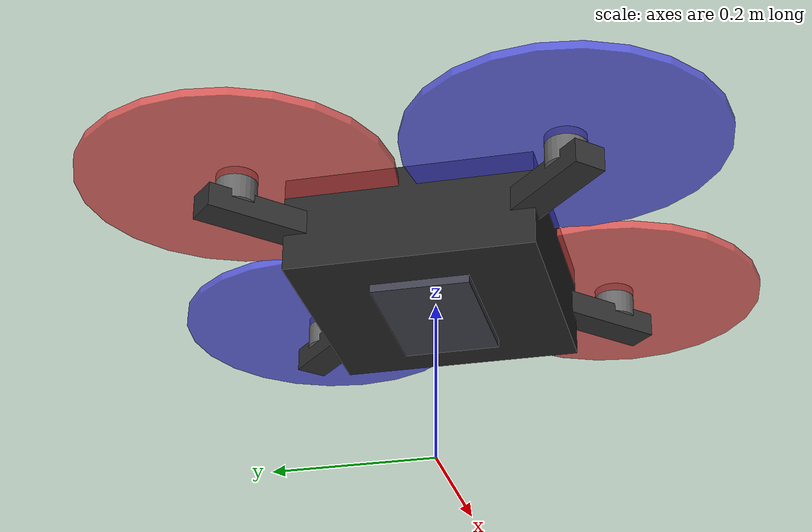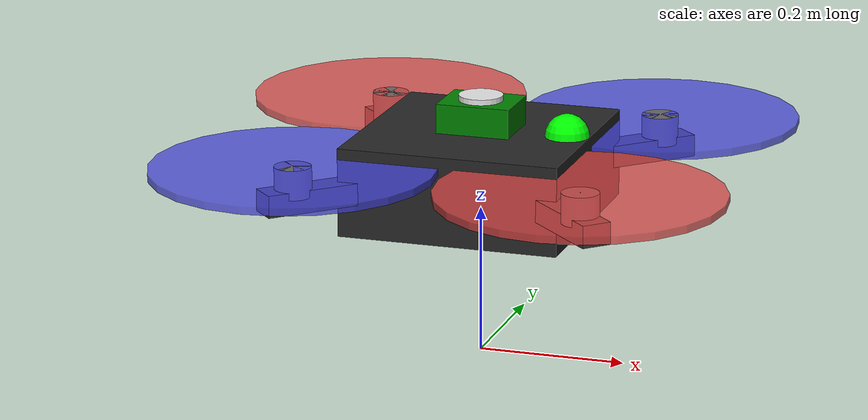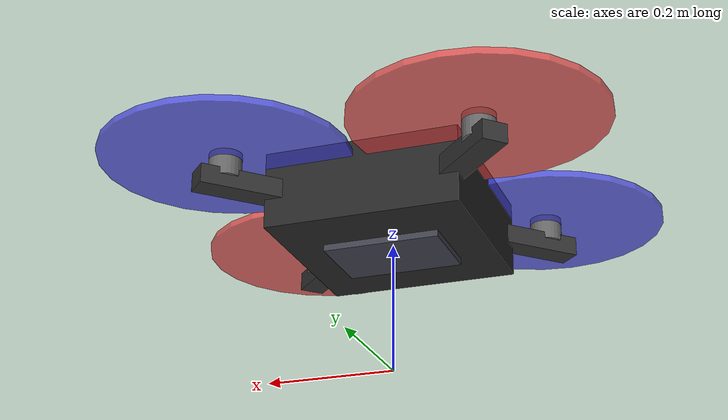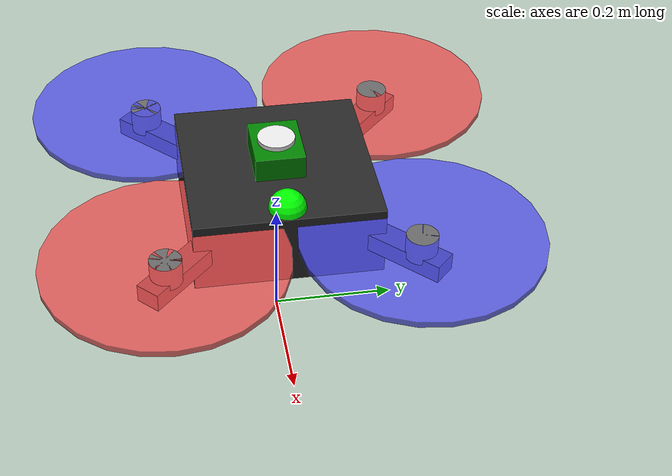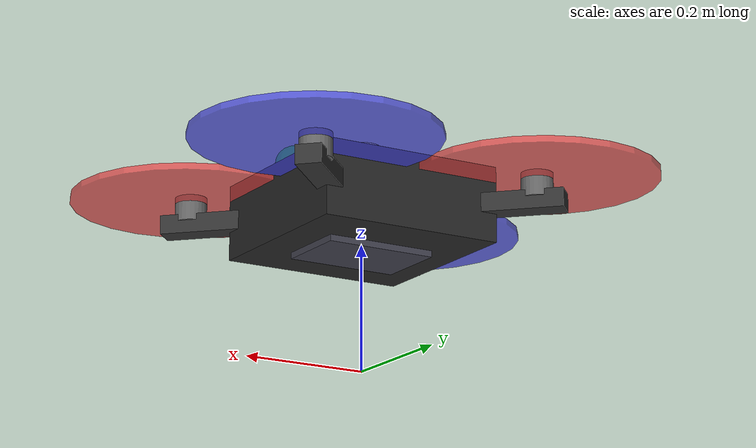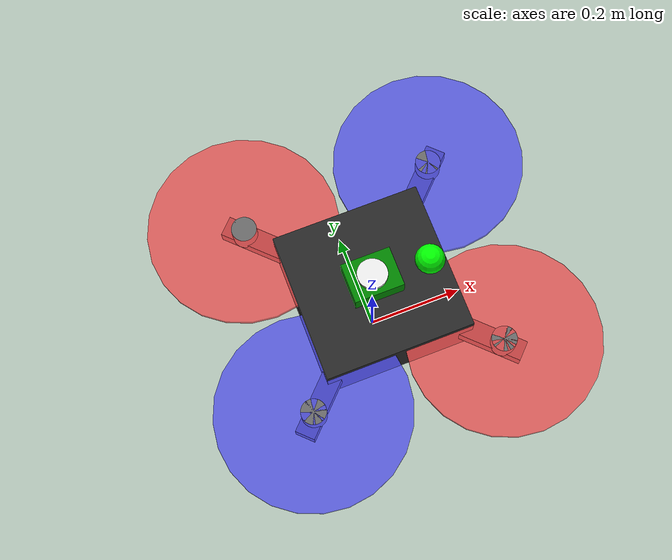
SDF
<?xml version="1.0" ?>
<sdf version="1.9">
  <model name="f11_base">
    <pose>0 0 0.25 0 0 0</pose>

    <!-- F-11 Base Link (Main Body) -->
    <link name="base_link">
      <inertial>
        <!-- Mass: 4.5 kg base frame -->
        <mass>4.5</mass>
        <inertia>
          <!-- Inertia for ~300x300x150mm body with arms -->
          <ixx>0.085</ixx>
          <ixy>0</ixy>
          <ixz>0</ixz>
          <iyy>0.085</iyy>
          <iyz>0</iyz>
          <izz>0.145</izz>
        </inertia>
      </inertial>

      <!-- Main body visual - central frame -->
      <visual name="body_visual">
        <geometry>
          <box>
            <size>0.30 0.30 0.12</size>
          </box>
        </geometry>
        <material>
          <ambient>0.1 0.1 0.1 1</ambient>
          <diffuse>0.15 0.15 0.15 1</diffuse>
          <specular>0.3 0.3 0.3 1</specular>
        </material>
      </visual>

      <!-- Battery bay visual -->
      <visual name="battery_visual">
        <pose>0 0 -0.04 0 0 0</pose>
        <geometry>
          <box>
            <size>0.18 0.12 0.06</size>
          </box>
        </geometry>
        <material>
          <ambient>0.2 0.2 0.25 1</ambient>
          <diffuse>0.25 0.25 0.3 1</diffuse>
        </material>
      </visual>

      <!-- Jetson Orin NX housing visual -->
      <visual name="compute_visual">
        <pose>0 0 0.08 0 0 0</pose>
        <geometry>
          <box>
            <size>0.10 0.08 0.04</size>
          </box>
        </geometry>
        <material>
          <ambient>0.0 0.4 0.0 1</ambient>
          <diffuse>0.0 0.5 0.0 1</diffuse>
        </material>
      </visual>

      <!-- Front marker for orientation (green) -->
      <visual name="front_marker">
        <pose>0.12 0 0.06 0 0 0</pose>
        <geometry>
          <sphere>
            <radius>0.03</radius>
          </sphere>
        </geometry>
        <material>
          <ambient>0 1 0 1</ambient>
          <diffuse>0 1 0 1</diffuse>
        </material>
      </visual>

      <!-- Arms visual representation -->
      <!-- Front-Right arm -->
      <visual name="arm_fr_visual">
        <pose>0.1375 -0.1375 0 0 0 -0.785398</pose>
        <geometry>
          <box>
            <size>0.25 0.04 0.03</size>
          </box>
        </geometry>
        <material>
          <ambient>0.15 0.15 0.15 1</ambient>
          <diffuse>0.2 0.2 0.2 1</diffuse>
        </material>
      </visual>

      <!-- Front-Left arm -->
      <visual name="arm_fl_visual">
        <pose>0.1375 0.1375 0 0 0 0.785398</pose>
        <geometry>
          <box>
            <size>0.25 0.04 0.03</size>
          </box>
        </geometry>
        <material>
          <ambient>0.15 0.15 0.15 1</ambient>
          <diffuse>0.2 0.2 0.2 1</diffuse>
        </material>
      </visual>

      <!-- Back-Right arm -->
      <visual name="arm_br_visual">
        <pose>-0.1375 -0.1375 0 0 0 0.785398</pose>
        <geometry>
          <box>
            <size>0.25 0.04 0.03</size>
          </box>
        </geometry>
        <material>
          <ambient>0.15 0.15 0.15 1</ambient>
          <diffuse>0.2 0.2 0.2 1</diffuse>
        </material>
      </visual>

      <!-- Back-Left arm -->
      <visual name="arm_bl_visual">
        <pose>-0.1375 0.1375 0 0 0 -0.785398</pose>
        <geometry>
          <box>
            <size>0.25 0.04 0.03</size>
          </box>
        </geometry>
        <material>
          <ambient>0.15 0.15 0.15 1</ambient>
          <diffuse>0.2 0.2 0.2 1</diffuse>
        </material>
      </visual>

      <!-- Collision geometry -->
      <collision name="body_collision">
        <geometry>
          <box>
            <size>0.55 0.55 0.15</size>
          </box>
        </geometry>
      </collision>
    </link>

    <!-- Rotor 0 (Front Right - CW) -->
    <link name="rotor_0">
      <pose>0.195 -0.195 0.04 0 0 0</pose>
      <inertial>
        <mass>0.025</mass>
        <inertia>
          <ixx>1.0e-05</ixx>
          <ixy>0</ixy>
          <ixz>0</ixz>
          <iyy>5.0e-04</iyy>
          <iyz>0</iyz>
          <izz>5.0e-04</izz>
        </inertia>
      </inertial>
      <visual name="rotor_visual">
        <geometry>
          <cylinder>
            <radius>0.19</radius>
            <length>0.01</length>
          </cylinder>
        </geometry>
        <material>
          <ambient>0.8 0.2 0.2 0.8</ambient>
          <diffuse>0.9 0.3 0.3 0.8</diffuse>
        </material>
      </visual>
      <visual name="motor_visual">
        <pose>0 0 -0.015 0 0 0</pose>
        <geometry>
          <cylinder>
            <radius>0.025</radius>
            <length>0.04</length>
          </cylinder>
        </geometry>
        <material>
          <ambient>0.3 0.3 0.3 1</ambient>
          <diffuse>0.4 0.4 0.4 1</diffuse>
        </material>
      </visual>
    </link>

    <!-- Rotor 1 (Back Left - CW) -->
    <link name="rotor_1">
      <pose>-0.195 0.195 0.04 0 0 0</pose>
      <inertial>
        <mass>0.025</mass>
        <inertia>
          <ixx>1.0e-05</ixx>
          <ixy>0</ixy>
          <ixz>0</ixz>
          <iyy>5.0e-04</iyy>
          <iyz>0</iyz>
          <izz>5.0e-04</izz>
        </inertia>
      </inertial>
      <visual name="rotor_visual">
        <geometry>
          <cylinder>
            <radius>0.19</radius>
            <length>0.01</length>
          </cylinder>
        </geometry>
        <material>
          <ambient>0.8 0.2 0.2 0.8</ambient>
          <diffuse>0.9 0.3 0.3 0.8</diffuse>
        </material>
      </visual>
      <visual name="motor_visual">
        <pose>0 0 -0.015 0 0 0</pose>
        <geometry>
          <cylinder>
            <radius>0.025</radius>
            <length>0.04</length>
          </cylinder>
        </geometry>
        <material>
          <ambient>0.3 0.3 0.3 1</ambient>
          <diffuse>0.4 0.4 0.4 1</diffuse>
        </material>
      </visual>
    </link>

    <!-- Rotor 2 (Front Left - CCW) -->
    <link name="rotor_2">
      <pose>0.195 0.195 0.04 0 0 0</pose>
      <inertial>
        <mass>0.025</mass>
        <inertia>
          <ixx>1.0e-05</ixx>
          <ixy>0</ixy>
          <ixz>0</ixz>
          <iyy>5.0e-04</iyy>
          <iyz>0</iyz>
          <izz>5.0e-04</izz>
        </inertia>
      </inertial>
      <visual name="rotor_visual">
        <geometry>
          <cylinder>
            <radius>0.19</radius>
            <length>0.01</length>
          </cylinder>
        </geometry>
        <material>
          <ambient>0.2 0.2 0.8 0.8</ambient>
          <diffuse>0.3 0.3 0.9 0.8</diffuse>
        </material>
      </visual>
      <visual name="motor_visual">
        <pose>0 0 -0.015 0 0 0</pose>
        <geometry>
          <cylinder>
            <radius>0.025</radius>
            <length>0.04</length>
          </cylinder>
        </geometry>
        <material>
          <ambient>0.3 0.3 0.3 1</ambient>
          <diffuse>0.4 0.4 0.4 1</diffuse>
        </material>
      </visual>
    </link>

    <!-- Rotor 3 (Back Right - CCW) -->
    <link name="rotor_3">
      <pose>-0.195 -0.195 0.04 0 0 0</pose>
      <inertial>
        <mass>0.025</mass>
        <inertia>
          <ixx>1.0e-05</ixx>
          <ixy>0</ixy>
          <ixz>0</ixz>
          <iyy>5.0e-04</iyy>
          <iyz>0</iyz>
          <izz>5.0e-04</izz>
        </inertia>
      </inertial>
      <visual name="rotor_visual">
        <geometry>
          <cylinder>
            <radius>0.19</radius>
            <length>0.01</length>
          </cylinder>
        </geometry>
        <material>
          <ambient>0.2 0.2 0.8 0.8</ambient>
          <diffuse>0.3 0.3 0.9 0.8</diffuse>
        </material>
      </visual>
      <visual name="motor_visual">
        <pose>0 0 -0.015 0 0 0</pose>
        <geometry>
          <cylinder>
            <radius>0.025</radius>
            <length>0.04</length>
          </cylinder>
        </geometry>
        <material>
          <ambient>0.3 0.3 0.3 1</ambient>
          <diffuse>0.4 0.4 0.4 1</diffuse>
        </material>
      </visual>
    </link>

    <!-- Rotor joints -->
    <joint name="rotor_0_joint" type="revolute">
      <parent>base_link</parent>
      <child>rotor_0</child>
      <axis>
        <xyz>0 0 1</xyz>
        <limit>
          <lower>-1e16</lower>
          <upper>1e16</upper>
        </limit>
        <dynamics>
          <damping>0.004</damping>
        </dynamics>
      </axis>
    </joint>

    <joint name="rotor_1_joint" type="revolute">
      <parent>base_link</parent>
      <child>rotor_1</child>
      <axis>
        <xyz>0 0 1</xyz>
        <limit>
          <lower>-1e16</lower>
          <upper>1e16</upper>
        </limit>
        <dynamics>
          <damping>0.004</damping>
        </dynamics>
      </axis>
    </joint>

    <joint name="rotor_2_joint" type="revolute">
      <parent>base_link</parent>
      <child>rotor_2</child>
      <axis>
        <xyz>0 0 1</xyz>
        <limit>
          <lower>-1e16</lower>
          <upper>1e16</upper>
        </limit>
        <dynamics>
          <damping>0.004</damping>
        </dynamics>
      </axis>
    </joint>

    <joint name="rotor_3_joint" type="revolute">
      <parent>base_link</parent>
      <child>rotor_3</child>
      <axis>
        <xyz>0 0 1</xyz>
        <limit>
          <lower>-1e16</lower>
          <upper>1e16</upper>
        </limit>
        <dynamics>
          <damping>0.004</damping>
        </dynamics>
      </axis>
    </joint>

    <!-- IMU Sensor Link -->
    <link name="imu_link">
      <pose>0 0 0 0 0 0</pose>
      <inertial>
        <mass>0.015</mass>
        <inertia>
          <ixx>1e-05</ixx>
          <ixy>0</ixy>
          <ixz>0</ixz>
          <iyy>1e-05</iyy>
          <iyz>0</iyz>
          <izz>1e-05</izz>
        </inertia>
      </inertial>
      <sensor name="imu_sensor" type="imu">
        <always_on>1</always_on>
        <update_rate>250</update_rate>
        <imu>
          <angular_velocity>
            <x>
              <noise type="gaussian">
                <mean>0</mean>
                <stddev>0.009</stddev>
              </noise>
            </x>
            <y>
              <noise type="gaussian">
                <mean>0</mean>
                <stddev>0.009</stddev>
              </noise>
            </y>
            <z>
              <noise type="gaussian">
                <mean>0</mean>
                <stddev>0.009</stddev>
              </noise>
            </z>
          </angular_velocity>
          <linear_acceleration>
            <x>
              <noise type="gaussian">
                <mean>0</mean>
                <stddev>0.017</stddev>
              </noise>
            </x>
            <y>
              <noise type="gaussian">
                <mean>0</mean>
                <stddev>0.017</stddev>
              </noise>
            </y>
            <z>
              <noise type="gaussian">
                <mean>0</mean>
                <stddev>0.017</stddev>
              </noise>
            </z>
          </linear_acceleration>
        </imu>
      </sensor>
    </link>

    <joint name="imu_joint" type="fixed">
      <parent>base_link</parent>
      <child>imu_link</child>
    </joint>

    <!-- GPS Link -->
    <link name="gps_link">
      <pose>0 0 0.10 0 0 0</pose>
      <inertial>
        <mass>0.05</mass>
        <inertia>
          <ixx>1e-05</ixx>
          <ixy>0</ixy>
          <ixz>0</ixz>
          <iyy>1e-05</iyy>
          <iyz>0</iyz>
          <izz>1e-05</izz>
        </inertia>
      </inertial>
      <visual name="gps_visual">
        <geometry>
          <cylinder>
            <radius>0.03</radius>
            <length>0.015</length>
          </cylinder>
        </geometry>
        <material>
          <ambient>0.8 0.8 0.8 1</ambient>
          <diffuse>0.9 0.9 0.9 1</diffuse>
        </material>
      </visual>
      <sensor name="gps_sensor" type="navsat">
        <always_on>1</always_on>
        <update_rate>10</update_rate>
      </sensor>
    </link>

    <joint name="gps_joint" type="fixed">
      <parent>base_link</parent>
      <child>gps_link</child>
    </joint>

    <!-- ArduPilot Plugin -->
    <plugin filename="ArduPilotPlugin" name="ArduPilotPlugin">
      <!-- SITL connection -->
      <fdm_addr>127.0.0.1</fdm_addr>
      <fdm_port_in>9002</fdm_port_in>
      <fdm_port_out>9003</fdm_port_out>

      <!-- Coordinate transformations -->
      <modelXYZToAirplaneXForwardZDown>0 0 0 3.141593 0 0</modelXYZToAirplaneXForwardZDown>
      <gazeboXYZToNED>0 0 0 3.141593 0 0</gazeboXYZToNED>
      <imuName>imu_link::imu_sensor</imuName>

      <!-- Motor 0: Front Right (CW) -->
      <control channel="0">
        <jointName>rotor_0_joint</jointName>
        <useForce>1</useForce>
        <multiplier>1200</multiplier>
        <offset>-0.5</offset>
        <servo_min>1000</servo_min>
        <servo_max>2000</servo_max>
        <type>VELOCITY</type>
        <p_gain>0.25</p_gain>
        <i_gain>0</i_gain>
        <d_gain>0</d_gain>
        <i_max>0</i_max>
        <i_min>0</i_min>
        <cmd_max>3.0</cmd_max>
        <cmd_min>-3.0</cmd_min>
      </control>

      <!-- Motor 1: Back Left (CW) -->
      <control channel="1">
        <jointName>rotor_1_joint</jointName>
        <useForce>1</useForce>
        <multiplier>1200</multiplier>
        <offset>-0.5</offset>
        <servo_min>1000</servo_min>
        <servo_max>2000</servo_max>
        <type>VELOCITY</type>
        <p_gain>0.25</p_gain>
        <i_gain>0</i_gain>
        <d_gain>0</d_gain>
        <i_max>0</i_max>
        <i_min>0</i_min>
        <cmd_max>3.0</cmd_max>
        <cmd_min>-3.0</cmd_min>
      </control>

      <!-- Motor 2: Front Left (CCW) -->
      <control channel="2">
        <jointName>rotor_2_joint</jointName>
        <useForce>1</useForce>
        <multiplier>1200</multiplier>
        <offset>-0.5</offset>
        <servo_min>1000</servo_min>
        <servo_max>2000</servo_max>
        <type>VELOCITY</type>
        <p_gain>0.25</p_gain>
        <i_gain>0</i_gain>
        <d_gain>0</d_gain>
        <i_max>0</i_max>
        <i_min>0</i_min>
        <cmd_max>3.0</cmd_max>
        <cmd_min>-3.0</cmd_min>
      </control>

      <!-- Motor 3: Back Right (CCW) -->
      <control channel="3">
        <jointName>rotor_3_joint</jointName>
        <useForce>1</useForce>
        <multiplier>1200</multiplier>
        <offset>-0.5</offset>
        <servo_min>1000</servo_min>
        <servo_max>2000</servo_max>
        <type>VELOCITY</type>
        <p_gain>0.25</p_gain>
        <i_gain>0</i_gain>
        <d_gain>0</d_gain>
        <i_max>0</i_max>
        <i_min>0</i_min>
        <cmd_max>3.0</cmd_max>
        <cmd_min>-3.0</cmd_min>
      </control>
    </plugin>

  </model>
</sdf>
